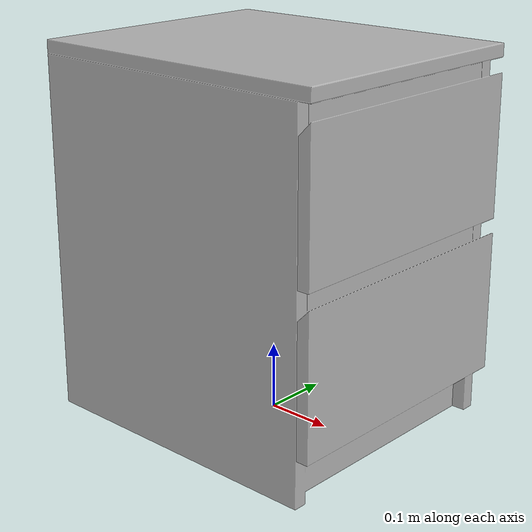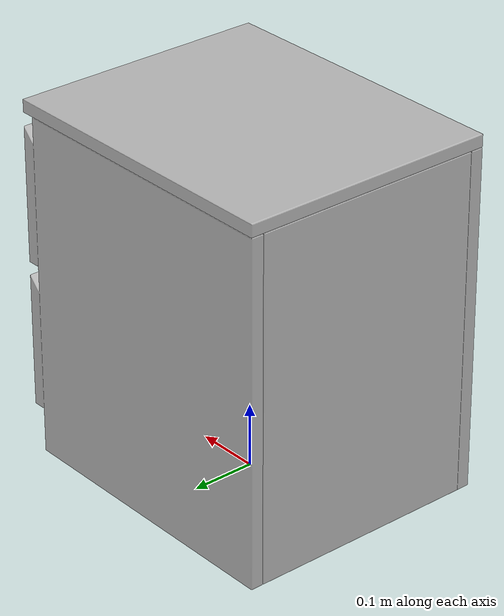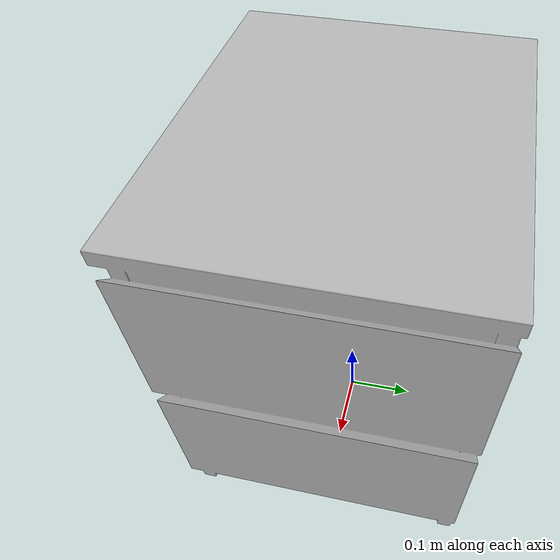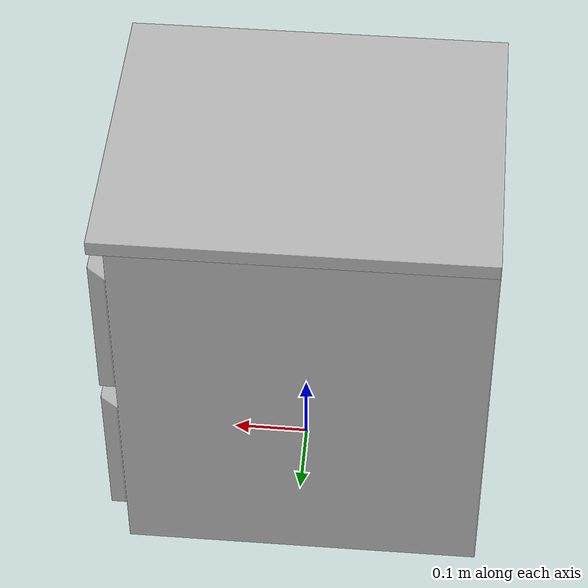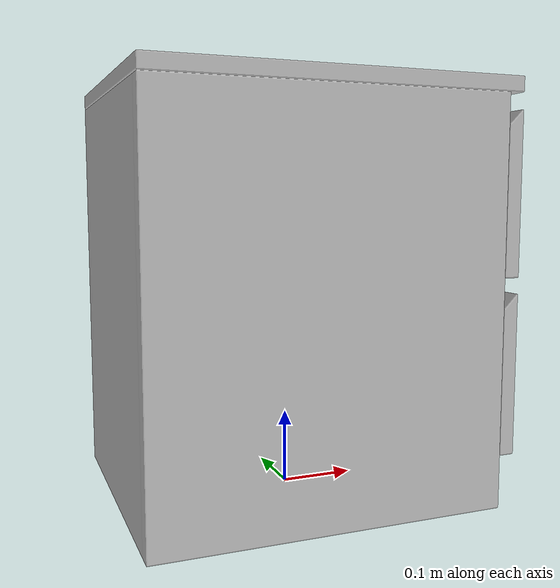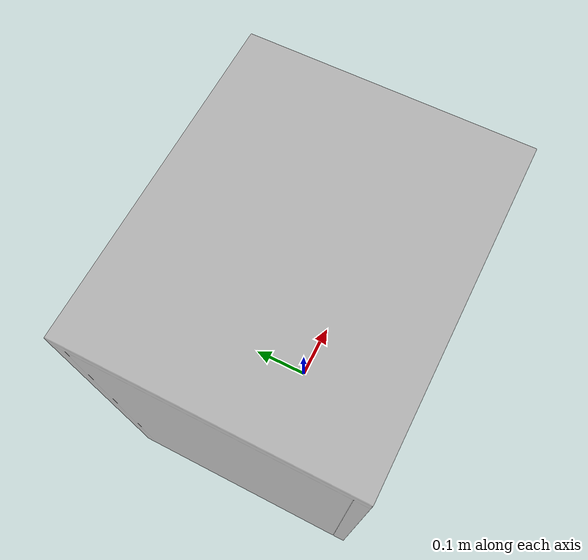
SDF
<?xml version='1.0'?>
<sdf version='1.4'>
  <model name='s__997'>
    <pose>0 0 0 0 0 0</pose>
    <static>true</static>
    <link name='link'>
      <collision name='collision'>
        <pose>0 0 0 0 0 0</pose>
        <geometry>
          <box>
            <size>0.48 0.4 2</size>
          </box>
        </geometry>
      </collision>
      <visual name='visual'>
        <pose>0 0 0 0 0 0</pose>
        <geometry>
          <mesh><uri>model://s__997/s__997.dae</uri></mesh>
        </geometry>
      </visual>
    </link>
  </model>
</sdf>
